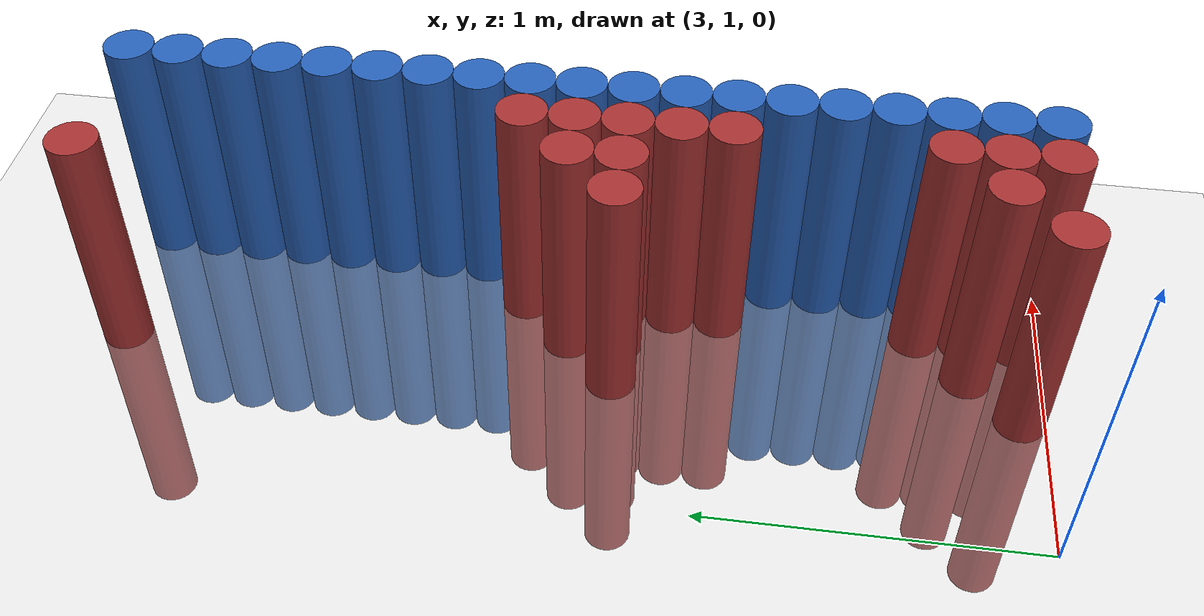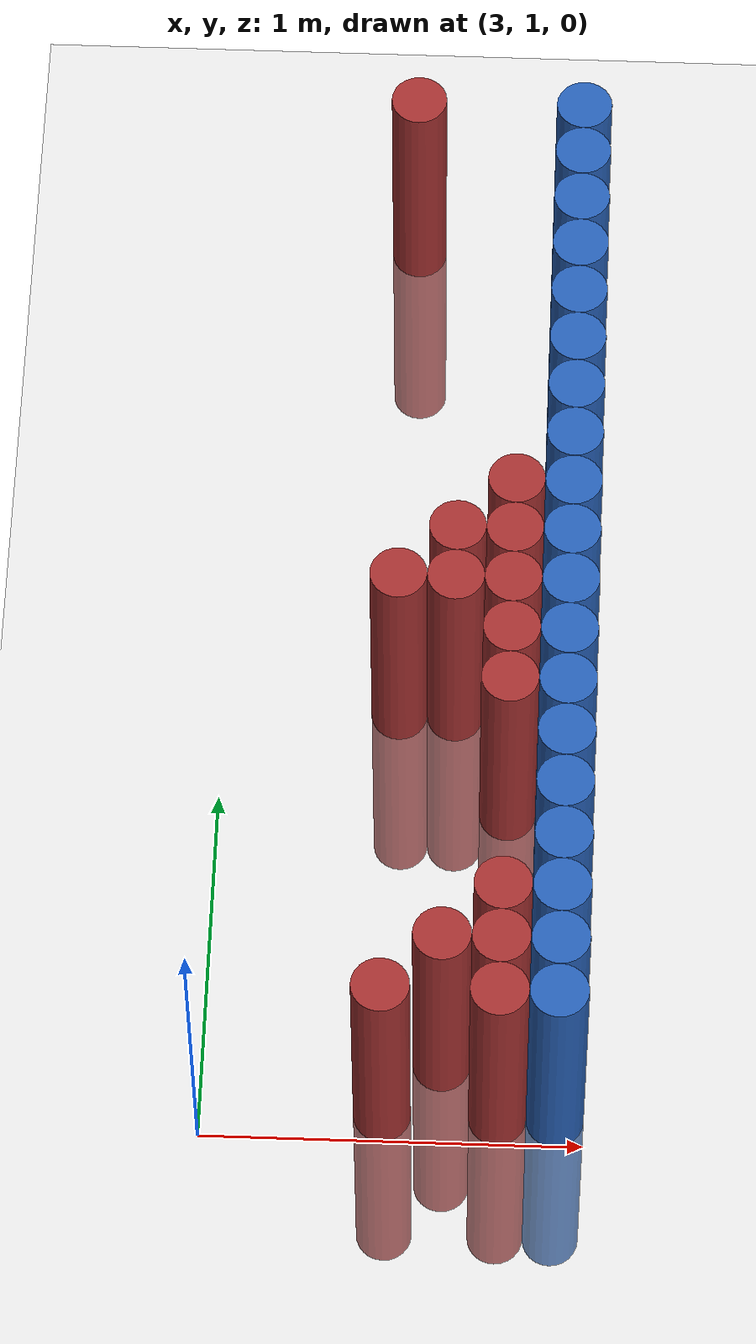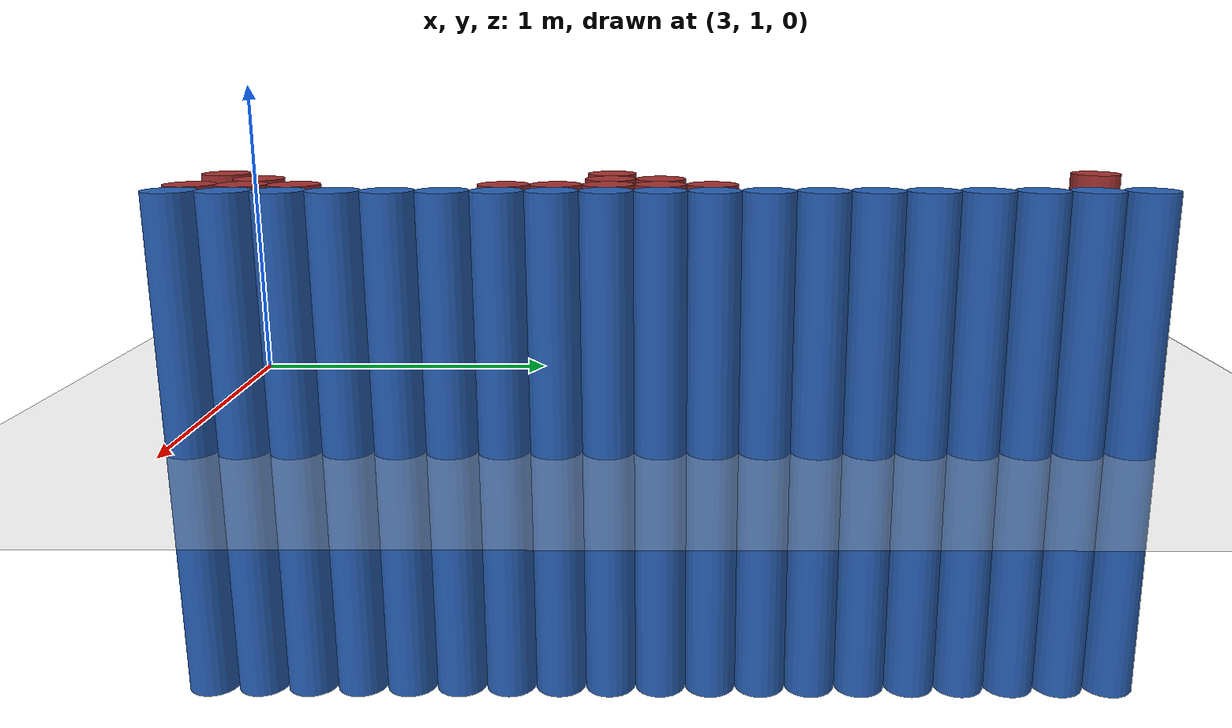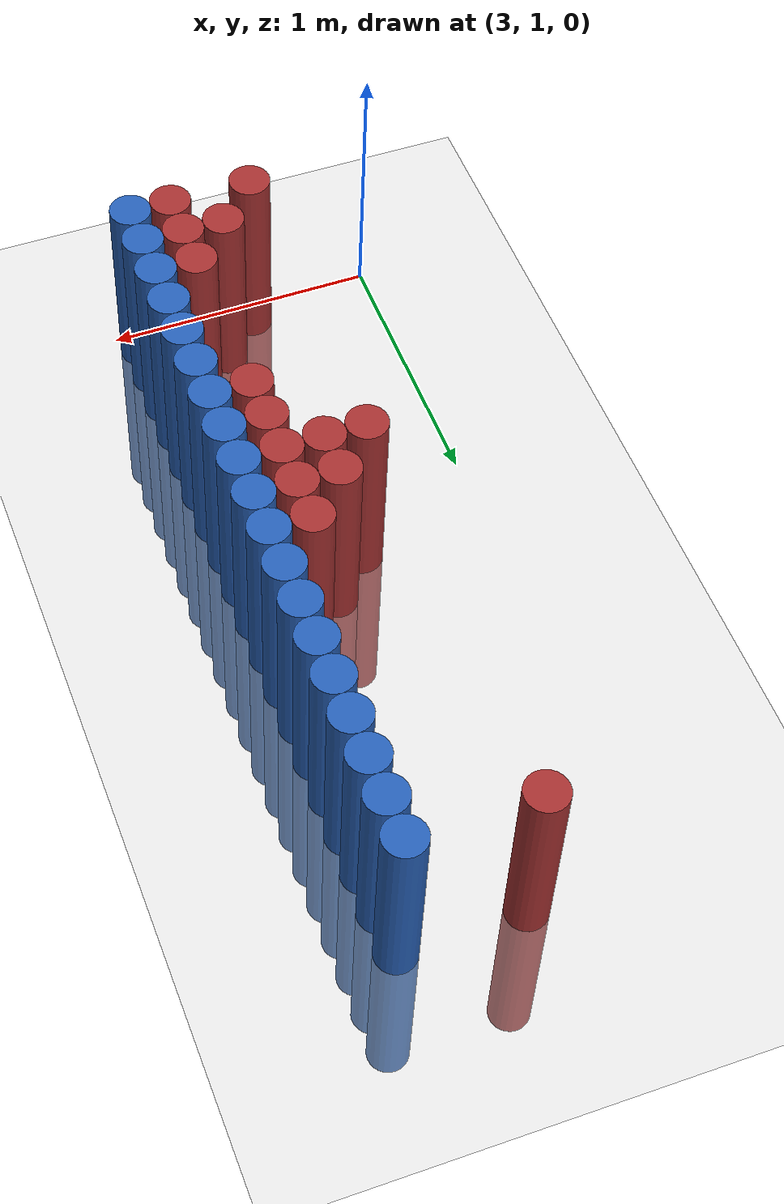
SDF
<sdf version="1.6">
 <world name="default">
  <model name="ground_plane">
   <static>1</static>
   <link name="link">
    <collision name="collision">
     <geometry><plane><normal>0 0 1</normal><size>100 100</size></plane></geometry>
     <surface><friction><ode><mu>100</mu><mu2>50</mu2></ode></friction></surface>
    </collision>
    <visual name="visual">
     <cast_shadows>0</cast_shadows>
     <geometry><plane><normal>0 0 1</normal><size>100 100</size></plane></geometry>
     <material>
      <script><uri>file://media/materials/scripts/gazebo.material</uri><name>Gazebo/Grey</name></script>
     </material>
    </visual>
   </link>
  </model>
  <model name="unit_cylinder_130">
   <static>1</static>
   <pose>3.925000 1.225000 0.000000 0.000000 0.000000 0.000000</pose>
   <link name="link">
    <inertial>
     <mass>1</mass>
     <inertia><ixx>0.145833</ixx><ixy>0</ixy><ixz>0</ixz><iyy>0.145833</iyy><iyz>0</iyz><izz>0.125</izz></inertia>
    </inertial>
    <collision name="collision">
     <geometry><cylinder><radius>0.075000</radius><length>1.5</length></cylinder></geometry>
    </collision>
    <visual name="visual">
     <geometry><cylinder><radius>0.075000</radius><length>1.5</length></cylinder></geometry>
     <material>
      <ambient>0.152000 0.379000 0.720000 1</ambient>
      <diffuse>0.152000 0.379000 0.720000 1</diffuse>
     </material>
     <material>
      <script><name>Gazebo/Grey</name><uri>file://media/materials/scripts/gazebo.material</uri></script>
     </material>
    </visual>
   </link>
  </model>
  <model name="unit_cylinder_132">
   <static>1</static>
   <pose>3.925000 1.375000 0.000000 0.000000 0.000000 0.000000</pose>
   <link name="link">
    <inertial>
     <mass>1</mass>
     <inertia><ixx>0.145833</ixx><ixy>0</ixy><ixz>0</ixz><iyy>0.145833</iyy><iyz>0</iyz><izz>0.125</izz></inertia>
    </inertial>
    <collision name="collision">
     <geometry><cylinder><radius>0.075000</radius><length>1.5</length></cylinder></geometry>
    </collision>
    <visual name="visual">
     <geometry><cylinder><radius>0.075000</radius><length>1.5</length></cylinder></geometry>
     <material>
      <ambient>0.152000 0.379000 0.720000 1</ambient>
      <diffuse>0.152000 0.379000 0.720000 1</diffuse>
     </material>
     <material>
      <script><name>Gazebo/Grey</name><uri>file://media/materials/scripts/gazebo.material</uri></script>
     </material>
    </visual>
   </link>
  </model>
  <model name="unit_cylinder_134">
   <static>1</static>
   <pose>3.925000 1.525000 0.000000 0.000000 0.000000 0.000000</pose>
   <link name="link">
    <inertial>
     <mass>1</mass>
     <inertia><ixx>0.145833</ixx><ixy>0</ixy><ixz>0</ixz><iyy>0.145833</iyy><iyz>0</iyz><izz>0.125</izz></inertia>
    </inertial>
    <collision name="collision">
     <geometry><cylinder><radius>0.075000</radius><length>1.5</length></cylinder></geometry>
    </collision>
    <visual name="visual">
     <geometry><cylinder><radius>0.075000</radius><length>1.5</length></cylinder></geometry>
     <material>
      <ambient>0.152000 0.379000 0.720000 1</ambient>
      <diffuse>0.152000 0.379000 0.720000 1</diffuse>
     </material>
     <material>
      <script><name>Gazebo/Grey</name><uri>file://media/materials/scripts/gazebo.material</uri></script>
     </material>
    </visual>
   </link>
  </model>
  <model name="unit_cylinder_136">
   <static>1</static>
   <pose>3.925000 1.675000 0.000000 0.000000 0.000000 0.000000</pose>
   <link name="link">
    <inertial>
     <mass>1</mass>
     <inertia><ixx>0.145833</ixx><ixy>0</ixy><ixz>0</ixz><iyy>0.145833</iyy><iyz>0</iyz><izz>0.125</izz></inertia>
    </inertial>
    <collision name="collision">
     <geometry><cylinder><radius>0.075000</radius><length>1.5</length></cylinder></geometry>
    </collision>
    <visual name="visual">
     <geometry><cylinder><radius>0.075000</radius><length>1.5</length></cylinder></geometry>
     <material>
      <ambient>0.152000 0.379000 0.720000 1</ambient>
      <diffuse>0.152000 0.379000 0.720000 1</diffuse>
     </material>
     <material>
      <script><name>Gazebo/Grey</name><uri>file://media/materials/scripts/gazebo.material</uri></script>
     </material>
    </visual>
   </link>
  </model>
  <model name="unit_cylinder_138">
   <static>1</static>
   <pose>3.925000 1.825000 0.000000 0.000000 0.000000 0.000000</pose>
   <link name="link">
    <inertial>
     <mass>1</mass>
     <inertia><ixx>0.145833</ixx><ixy>0</ixy><ixz>0</ixz><iyy>0.145833</iyy><iyz>0</iyz><izz>0.125</izz></inertia>
    </inertial>
    <collision name="collision">
     <geometry><cylinder><radius>0.075000</radius><length>1.5</length></cylinder></geometry>
    </collision>
    <visual name="visual">
     <geometry><cylinder><radius>0.075000</radius><length>1.5</length></cylinder></geometry>
     <material>
      <ambient>0.152000 0.379000 0.720000 1</ambient>
      <diffuse>0.152000 0.379000 0.720000 1</diffuse>
     </material>
     <material>
      <script><name>Gazebo/Grey</name><uri>file://media/materials/scripts/gazebo.material</uri></script>
     </material>
    </visual>
   </link>
  </model>
  <model name="unit_cylinder_140">
   <static>1</static>
   <pose>3.925000 1.975000 0.000000 0.000000 0.000000 0.000000</pose>
   <link name="link">
    <inertial>
     <mass>1</mass>
     <inertia><ixx>0.145833</ixx><ixy>0</ixy><ixz>0</ixz><iyy>0.145833</iyy><iyz>0</iyz><izz>0.125</izz></inertia>
    </inertial>
    <collision name="collision">
     <geometry><cylinder><radius>0.075000</radius><length>1.5</length></cylinder></geometry>
    </collision>
    <visual name="visual">
     <geometry><cylinder><radius>0.075000</radius><length>1.5</length></cylinder></geometry>
     <material>
      <ambient>0.152000 0.379000 0.720000 1</ambient>
      <diffuse>0.152000 0.379000 0.720000 1</diffuse>
     </material>
     <material>
      <script><name>Gazebo/Grey</name><uri>file://media/materials/scripts/gazebo.material</uri></script>
     </material>
    </visual>
   </link>
  </model>
  <model name="unit_cylinder_142">
   <static>1</static>
   <pose>3.925000 2.125000 0.000000 0.000000 0.000000 0.000000</pose>
   <link name="link">
    <inertial>
     <mass>1</mass>
     <inertia><ixx>0.145833</ixx><ixy>0</ixy><ixz>0</ixz><iyy>0.145833</iyy><iyz>0</iyz><izz>0.125</izz></inertia>
    </inertial>
    <collision name="collision">
     <geometry><cylinder><radius>0.075000</radius><length>1.5</length></cylinder></geometry>
    </collision>
    <visual name="visual">
     <geometry><cylinder><radius>0.075000</radius><length>1.5</length></cylinder></geometry>
     <material>
      <ambient>0.152000 0.379000 0.720000 1</ambient>
      <diffuse>0.152000 0.379000 0.720000 1</diffuse>
     </material>
     <material>
      <script><name>Gazebo/Grey</name><uri>file://media/materials/scripts/gazebo.material</uri></script>
     </material>
    </visual>
   </link>
  </model>
  <model name="unit_cylinder_144">
   <static>1</static>
   <pose>3.925000 2.275000 0.000000 0.000000 0.000000 0.000000</pose>
   <link name="link">
    <inertial>
     <mass>1</mass>
     <inertia><ixx>0.145833</ixx><ixy>0</ixy><ixz>0</ixz><iyy>0.145833</iyy><iyz>0</iyz><izz>0.125</izz></inertia>
    </inertial>
    <collision name="collision">
     <geometry><cylinder><radius>0.075000</radius><length>1.5</length></cylinder></geometry>
    </collision>
    <visual name="visual">
     <geometry><cylinder><radius>0.075000</radius><length>1.5</length></cylinder></geometry>
     <material>
      <ambient>0.152000 0.379000 0.720000 1</ambient>
      <diffuse>0.152000 0.379000 0.720000 1</diffuse>
     </material>
     <material>
      <script><name>Gazebo/Grey</name><uri>file://media/materials/scripts/gazebo.material</uri></script>
     </material>
    </visual>
   </link>
  </model>
  <model name="unit_cylinder_146">
   <static>1</static>
   <pose>3.925000 2.425000 0.000000 0.000000 0.000000 0.000000</pose>
   <link name="link">
    <inertial>
     <mass>1</mass>
     <inertia><ixx>0.145833</ixx><ixy>0</ixy><ixz>0</ixz><iyy>0.145833</iyy><iyz>0</iyz><izz>0.125</izz></inertia>
    </inertial>
    <collision name="collision">
     <geometry><cylinder><radius>0.075000</radius><length>1.5</length></cylinder></geometry>
    </collision>
    <visual name="visual">
     <geometry><cylinder><radius>0.075000</radius><length>1.5</length></cylinder></geometry>
     <material>
      <ambient>0.152000 0.379000 0.720000 1</ambient>
      <diffuse>0.152000 0.379000 0.720000 1</diffuse>
     </material>
     <material>
      <script><name>Gazebo/Grey</name><uri>file://media/materials/scripts/gazebo.material</uri></script>
     </material>
    </visual>
   </link>
  </model>
  <model name="unit_cylinder_148">
   <static>1</static>
   <pose>3.925000 2.575000 0.000000 0.000000 0.000000 0.000000</pose>
   <link name="link">
    <inertial>
     <mass>1</mass>
     <inertia><ixx>0.145833</ixx><ixy>0</ixy><ixz>0</ixz><iyy>0.145833</iyy><iyz>0</iyz><izz>0.125</izz></inertia>
    </inertial>
    <collision name="collision">
     <geometry><cylinder><radius>0.075000</radius><length>1.5</length></cylinder></geometry>
    </collision>
    <visual name="visual">
     <geometry><cylinder><radius>0.075000</radius><length>1.5</length></cylinder></geometry>
     <material>
      <ambient>0.152000 0.379000 0.720000 1</ambient>
      <diffuse>0.152000 0.379000 0.720000 1</diffuse>
     </material>
     <material>
      <script><name>Gazebo/Grey</name><uri>file://media/materials/scripts/gazebo.material</uri></script>
     </material>
    </visual>
   </link>
  </model>
  <model name="unit_cylinder_150">
   <static>1</static>
   <pose>3.925000 2.725000 0.000000 0.000000 0.000000 0.000000</pose>
   <link name="link">
    <inertial>
     <mass>1</mass>
     <inertia><ixx>0.145833</ixx><ixy>0</ixy><ixz>0</ixz><iyy>0.145833</iyy><iyz>0</iyz><izz>0.125</izz></inertia>
    </inertial>
    <collision name="collision">
     <geometry><cylinder><radius>0.075000</radius><length>1.5</length></cylinder></geometry>
    </collision>
    <visual name="visual">
     <geometry><cylinder><radius>0.075000</radius><length>1.5</length></cylinder></geometry>
     <material>
      <ambient>0.152000 0.379000 0.720000 1</ambient>
      <diffuse>0.152000 0.379000 0.720000 1</diffuse>
     </material>
     <material>
      <script><name>Gazebo/Grey</name><uri>file://media/materials/scripts/gazebo.material</uri></script>
     </material>
    </visual>
   </link>
  </model>
  <model name="unit_cylinder_152">
   <static>1</static>
   <pose>3.925000 2.875000 0.000000 0.000000 0.000000 0.000000</pose>
   <link name="link">
    <inertial>
     <mass>1</mass>
     <inertia><ixx>0.145833</ixx><ixy>0</ixy><ixz>0</ixz><iyy>0.145833</iyy><iyz>0</iyz><izz>0.125</izz></inertia>
    </inertial>
    <collision name="collision">
     <geometry><cylinder><radius>0.075000</radius><length>1.5</length></cylinder></geometry>
    </collision>
    <visual name="visual">
     <geometry><cylinder><radius>0.075000</radius><length>1.5</length></cylinder></geometry>
     <material>
      <ambient>0.152000 0.379000 0.720000 1</ambient>
      <diffuse>0.152000 0.379000 0.720000 1</diffuse>
     </material>
     <material>
      <script><name>Gazebo/Grey</name><uri>file://media/materials/scripts/gazebo.material</uri></script>
     </material>
    </visual>
   </link>
  </model>
  <model name="unit_cylinder_154">
   <static>1</static>
   <pose>3.925000 3.025000 0.000000 0.000000 0.000000 0.000000</pose>
   <link name="link">
    <inertial>
     <mass>1</mass>
     <inertia><ixx>0.145833</ixx><ixy>0</ixy><ixz>0</ixz><iyy>0.145833</iyy><iyz>0</iyz><izz>0.125</izz></inertia>
    </inertial>
    <collision name="collision">
     <geometry><cylinder><radius>0.075000</radius><length>1.5</length></cylinder></geometry>
    </collision>
    <visual name="visual">
     <geometry><cylinder><radius>0.075000</radius><length>1.5</length></cylinder></geometry>
     <material>
      <ambient>0.152000 0.379000 0.720000 1</ambient>
      <diffuse>0.152000 0.379000 0.720000 1</diffuse>
     </material>
     <material>
      <script><name>Gazebo/Grey</name><uri>file://media/materials/scripts/gazebo.material</uri></script>
     </material>
    </visual>
   </link>
  </model>
  <model name="unit_cylinder_156">
   <static>1</static>
   <pose>3.925000 3.175000 0.000000 0.000000 0.000000 0.000000</pose>
   <link name="link">
    <inertial>
     <mass>1</mass>
     <inertia><ixx>0.145833</ixx><ixy>0</ixy><ixz>0</ixz><iyy>0.145833</iyy><iyz>0</iyz><izz>0.125</izz></inertia>
    </inertial>
    <collision name="collision">
     <geometry><cylinder><radius>0.075000</radius><length>1.5</length></cylinder></geometry>
    </collision>
    <visual name="visual">
     <geometry><cylinder><radius>0.075000</radius><length>1.5</length></cylinder></geometry>
     <material>
      <ambient>0.152000 0.379000 0.720000 1</ambient>
      <diffuse>0.152000 0.379000 0.720000 1</diffuse>
     </material>
     <material>
      <script><name>Gazebo/Grey</name><uri>file://media/materials/scripts/gazebo.material</uri></script>
     </material>
    </visual>
   </link>
  </model>
  <model name="unit_cylinder_158">
   <static>1</static>
   <pose>3.925000 3.325000 0.000000 0.000000 0.000000 0.000000</pose>
   <link name="link">
    <inertial>
     <mass>1</mass>
     <inertia><ixx>0.145833</ixx><ixy>0</ixy><ixz>0</ixz><iyy>0.145833</iyy><iyz>0</iyz><izz>0.125</izz></inertia>
    </inertial>
    <collision name="collision">
     <geometry><cylinder><radius>0.075000</radius><length>1.5</length></cylinder></geometry>
    </collision>
    <visual name="visual">
     <geometry><cylinder><radius>0.075000</radius><length>1.5</length></cylinder></geometry>
     <material>
      <ambient>0.152000 0.379000 0.720000 1</ambient>
      <diffuse>0.152000 0.379000 0.720000 1</diffuse>
     </material>
     <material>
      <script><name>Gazebo/Grey</name><uri>file://media/materials/scripts/gazebo.material</uri></script>
     </material>
    </visual>
   </link>
  </model>
  <model name="unit_cylinder_160">
   <static>1</static>
   <pose>3.925000 3.475000 0.000000 0.000000 0.000000 0.000000</pose>
   <link name="link">
    <inertial>
     <mass>1</mass>
     <inertia><ixx>0.145833</ixx><ixy>0</ixy><ixz>0</ixz><iyy>0.145833</iyy><iyz>0</iyz><izz>0.125</izz></inertia>
    </inertial>
    <collision name="collision">
     <geometry><cylinder><radius>0.075000</radius><length>1.5</length></cylinder></geometry>
    </collision>
    <visual name="visual">
     <geometry><cylinder><radius>0.075000</radius><length>1.5</length></cylinder></geometry>
     <material>
      <ambient>0.152000 0.379000 0.720000 1</ambient>
      <diffuse>0.152000 0.379000 0.720000 1</diffuse>
     </material>
     <material>
      <script><name>Gazebo/Grey</name><uri>file://media/materials/scripts/gazebo.material</uri></script>
     </material>
    </visual>
   </link>
  </model>
  <model name="unit_cylinder_162">
   <static>1</static>
   <pose>3.925000 3.625000 0.000000 0.000000 0.000000 0.000000</pose>
   <link name="link">
    <inertial>
     <mass>1</mass>
     <inertia><ixx>0.145833</ixx><ixy>0</ixy><ixz>0</ixz><iyy>0.145833</iyy><iyz>0</iyz><izz>0.125</izz></inertia>
    </inertial>
    <collision name="collision">
     <geometry><cylinder><radius>0.075000</radius><length>1.5</length></cylinder></geometry>
    </collision>
    <visual name="visual">
     <geometry><cylinder><radius>0.075000</radius><length>1.5</length></cylinder></geometry>
     <material>
      <ambient>0.152000 0.379000 0.720000 1</ambient>
      <diffuse>0.152000 0.379000 0.720000 1</diffuse>
     </material>
     <material>
      <script><name>Gazebo/Grey</name><uri>file://media/materials/scripts/gazebo.material</uri></script>
     </material>
    </visual>
   </link>
  </model>
  <model name="unit_cylinder_164">
   <static>1</static>
   <pose>3.925000 3.775000 0.000000 0.000000 0.000000 0.000000</pose>
   <link name="link">
    <inertial>
     <mass>1</mass>
     <inertia><ixx>0.145833</ixx><ixy>0</ixy><ixz>0</ixz><iyy>0.145833</iyy><iyz>0</iyz><izz>0.125</izz></inertia>
    </inertial>
    <collision name="collision">
     <geometry><cylinder><radius>0.075000</radius><length>1.5</length></cylinder></geometry>
    </collision>
    <visual name="visual">
     <geometry><cylinder><radius>0.075000</radius><length>1.5</length></cylinder></geometry>
     <material>
      <ambient>0.152000 0.379000 0.720000 1</ambient>
      <diffuse>0.152000 0.379000 0.720000 1</diffuse>
     </material>
     <material>
      <script><name>Gazebo/Grey</name><uri>file://media/materials/scripts/gazebo.material</uri></script>
     </material>
    </visual>
   </link>
  </model>
  <model name="unit_cylinder_419">
   <static>1</static>
   <pose>3.475000 1.075000 0.000000 0.000000 0.000000 0.000000</pose>
   <link name="link">
    <inertial>
     <mass>1</mass>
     <inertia><ixx>0.145833</ixx><ixy>0</ixy><ixz>0</ixz><iyy>0.145833</iyy><iyz>0</iyz><izz>0.125</izz></inertia>
    </inertial>
    <collision name="collision">
     <geometry><cylinder><radius>0.075000</radius><length>1.5</length></cylinder></geometry>
    </collision>
    <visual name="visual">
     <geometry><cylinder><radius>0.075000</radius><length>1.5</length></cylinder></geometry>
     <material>
      <ambient>0.648000 0.192000 0.192000 1</ambient>
      <diffuse>0.648000 0.192000 0.192000 1</diffuse>
     </material>
     <material>
      <script><name>Gazebo/Grey</name><uri>file://media/materials/scripts/gazebo.material</uri></script>
     </material>
    </visual>
   </link>
  </model>
  <model name="unit_cylinder_420">
   <static>1</static>
   <pose>3.475000 2.275000 0.000000 0.000000 0.000000 0.000000</pose>
   <link name="link">
    <inertial>
     <mass>1</mass>
     <inertia><ixx>0.145833</ixx><ixy>0</ixy><ixz>0</ixz><iyy>0.145833</iyy><iyz>0</iyz><izz>0.125</izz></inertia>
    </inertial>
    <collision name="collision">
     <geometry><cylinder><radius>0.075000</radius><length>1.5</length></cylinder></geometry>
    </collision>
    <visual name="visual">
     <geometry><cylinder><radius>0.075000</radius><length>1.5</length></cylinder></geometry>
     <material>
      <ambient>0.648000 0.192000 0.192000 1</ambient>
      <diffuse>0.648000 0.192000 0.192000 1</diffuse>
     </material>
     <material>
      <script><name>Gazebo/Grey</name><uri>file://media/materials/scripts/gazebo.material</uri></script>
     </material>
    </visual>
   </link>
  </model>
  <model name="unit_cylinder_421">
   <static>1</static>
   <pose>3.475000 3.775000 0.000000 0.000000 0.000000 0.000000</pose>
   <link name="link">
    <inertial>
     <mass>1</mass>
     <inertia><ixx>0.145833</ixx><ixy>0</ixy><ixz>0</ixz><iyy>0.145833</iyy><iyz>0</iyz><izz>0.125</izz></inertia>
    </inertial>
    <collision name="collision">
     <geometry><cylinder><radius>0.075000</radius><length>1.5</length></cylinder></geometry>
    </collision>
    <visual name="visual">
     <geometry><cylinder><radius>0.075000</radius><length>1.5</length></cylinder></geometry>
     <material>
      <ambient>0.648000 0.192000 0.192000 1</ambient>
      <diffuse>0.648000 0.192000 0.192000 1</diffuse>
     </material>
     <material>
      <script><name>Gazebo/Grey</name><uri>file://media/materials/scripts/gazebo.material</uri></script>
     </material>
    </visual>
   </link>
  </model>
  <model name="unit_cylinder_428">
   <static>1</static>
   <pose>3.625000 1.225000 0.000000 0.000000 0.000000 0.000000</pose>
   <link name="link">
    <inertial>
     <mass>1</mass>
     <inertia><ixx>0.145833</ixx><ixy>0</ixy><ixz>0</ixz><iyy>0.145833</iyy><iyz>0</iyz><izz>0.125</izz></inertia>
    </inertial>
    <collision name="collision">
     <geometry><cylinder><radius>0.075000</radius><length>1.5</length></cylinder></geometry>
    </collision>
    <visual name="visual">
     <geometry><cylinder><radius>0.075000</radius><length>1.5</length></cylinder></geometry>
     <material>
      <ambient>0.648000 0.192000 0.192000 1</ambient>
      <diffuse>0.648000 0.192000 0.192000 1</diffuse>
     </material>
     <material>
      <script><name>Gazebo/Grey</name><uri>file://media/materials/scripts/gazebo.material</uri></script>
     </material>
    </visual>
   </link>
  </model>
  <model name="unit_cylinder_429">
   <static>1</static>
   <pose>3.625000 2.275000 0.000000 0.000000 0.000000 0.000000</pose>
   <link name="link">
    <inertial>
     <mass>1</mass>
     <inertia><ixx>0.145833</ixx><ixy>0</ixy><ixz>0</ixz><iyy>0.145833</iyy><iyz>0</iyz><izz>0.125</izz></inertia>
    </inertial>
    <collision name="collision">
     <geometry><cylinder><radius>0.075000</radius><length>1.5</length></cylinder></geometry>
    </collision>
    <visual name="visual">
     <geometry><cylinder><radius>0.075000</radius><length>1.5</length></cylinder></geometry>
     <material>
      <ambient>0.648000 0.192000 0.192000 1</ambient>
      <diffuse>0.648000 0.192000 0.192000 1</diffuse>
     </material>
     <material>
      <script><name>Gazebo/Grey</name><uri>file://media/materials/scripts/gazebo.material</uri></script>
     </material>
    </visual>
   </link>
  </model>
  <model name="unit_cylinder_430">
   <static>1</static>
   <pose>3.625000 2.425000 0.000000 0.000000 0.000000 0.000000</pose>
   <link name="link">
    <inertial>
     <mass>1</mass>
     <inertia><ixx>0.145833</ixx><ixy>0</ixy><ixz>0</ixz><iyy>0.145833</iyy><iyz>0</iyz><izz>0.125</izz></inertia>
    </inertial>
    <collision name="collision">
     <geometry><cylinder><radius>0.075000</radius><length>1.5</length></cylinder></geometry>
    </collision>
    <visual name="visual">
     <geometry><cylinder><radius>0.075000</radius><length>1.5</length></cylinder></geometry>
     <material>
      <ambient>0.648000 0.192000 0.192000 1</ambient>
      <diffuse>0.648000 0.192000 0.192000 1</diffuse>
     </material>
     <material>
      <script><name>Gazebo/Grey</name><uri>file://media/materials/scripts/gazebo.material</uri></script>
     </material>
    </visual>
   </link>
  </model>
  <model name="unit_cylinder_443">
   <static>1</static>
   <pose>3.775000 1.075000 0.000000 0.000000 0.000000 0.000000</pose>
   <link name="link">
    <inertial>
     <mass>1</mass>
     <inertia><ixx>0.145833</ixx><ixy>0</ixy><ixz>0</ixz><iyy>0.145833</iyy><iyz>0</iyz><izz>0.125</izz></inertia>
    </inertial>
    <collision name="collision">
     <geometry><cylinder><radius>0.075000</radius><length>1.5</length></cylinder></geometry>
    </collision>
    <visual name="visual">
     <geometry><cylinder><radius>0.075000</radius><length>1.5</length></cylinder></geometry>
     <material>
      <ambient>0.648000 0.192000 0.192000 1</ambient>
      <diffuse>0.648000 0.192000 0.192000 1</diffuse>
     </material>
     <material>
      <script><name>Gazebo/Grey</name><uri>file://media/materials/scripts/gazebo.material</uri></script>
     </material>
    </visual>
   </link>
  </model>
  <model name="unit_cylinder_444">
   <static>1</static>
   <pose>3.775000 1.225000 0.000000 0.000000 0.000000 0.000000</pose>
   <link name="link">
    <inertial>
     <mass>1</mass>
     <inertia><ixx>0.145833</ixx><ixy>0</ixy><ixz>0</ixz><iyy>0.145833</iyy><iyz>0</iyz><izz>0.125</izz></inertia>
    </inertial>
    <collision name="collision">
     <geometry><cylinder><radius>0.075000</radius><length>1.5</length></cylinder></geometry>
    </collision>
    <visual name="visual">
     <geometry><cylinder><radius>0.075000</radius><length>1.5</length></cylinder></geometry>
     <material>
      <ambient>0.648000 0.192000 0.192000 1</ambient>
      <diffuse>0.648000 0.192000 0.192000 1</diffuse>
     </material>
     <material>
      <script><name>Gazebo/Grey</name><uri>file://media/materials/scripts/gazebo.material</uri></script>
     </material>
    </visual>
   </link>
  </model>
  <model name="unit_cylinder_445">
   <static>1</static>
   <pose>3.775000 1.375000 0.000000 0.000000 0.000000 0.000000</pose>
   <link name="link">
    <inertial>
     <mass>1</mass>
     <inertia><ixx>0.145833</ixx><ixy>0</ixy><ixz>0</ixz><iyy>0.145833</iyy><iyz>0</iyz><izz>0.125</izz></inertia>
    </inertial>
    <collision name="collision">
     <geometry><cylinder><radius>0.075000</radius><length>1.5</length></cylinder></geometry>
    </collision>
    <visual name="visual">
     <geometry><cylinder><radius>0.075000</radius><length>1.5</length></cylinder></geometry>
     <material>
      <ambient>0.648000 0.192000 0.192000 1</ambient>
      <diffuse>0.648000 0.192000 0.192000 1</diffuse>
     </material>
     <material>
      <script><name>Gazebo/Grey</name><uri>file://media/materials/scripts/gazebo.material</uri></script>
     </material>
    </visual>
   </link>
  </model>
  <model name="unit_cylinder_446">
   <static>1</static>
   <pose>3.775000 1.975000 0.000000 0.000000 0.000000 0.000000</pose>
   <link name="link">
    <inertial>
     <mass>1</mass>
     <inertia><ixx>0.145833</ixx><ixy>0</ixy><ixz>0</ixz><iyy>0.145833</iyy><iyz>0</iyz><izz>0.125</izz></inertia>
    </inertial>
    <collision name="collision">
     <geometry><cylinder><radius>0.075000</radius><length>1.5</length></cylinder></geometry>
    </collision>
    <visual name="visual">
     <geometry><cylinder><radius>0.075000</radius><length>1.5</length></cylinder></geometry>
     <material>
      <ambient>0.648000 0.192000 0.192000 1</ambient>
      <diffuse>0.648000 0.192000 0.192000 1</diffuse>
     </material>
     <material>
      <script><name>Gazebo/Grey</name><uri>file://media/materials/scripts/gazebo.material</uri></script>
     </material>
    </visual>
   </link>
  </model>
  <model name="unit_cylinder_447">
   <static>1</static>
   <pose>3.775000 2.125000 0.000000 0.000000 0.000000 0.000000</pose>
   <link name="link">
    <inertial>
     <mass>1</mass>
     <inertia><ixx>0.145833</ixx><ixy>0</ixy><ixz>0</ixz><iyy>0.145833</iyy><iyz>0</iyz><izz>0.125</izz></inertia>
    </inertial>
    <collision name="collision">
     <geometry><cylinder><radius>0.075000</radius><length>1.5</length></cylinder></geometry>
    </collision>
    <visual name="visual">
     <geometry><cylinder><radius>0.075000</radius><length>1.5</length></cylinder></geometry>
     <material>
      <ambient>0.648000 0.192000 0.192000 1</ambient>
      <diffuse>0.648000 0.192000 0.192000 1</diffuse>
     </material>
     <material>
      <script><name>Gazebo/Grey</name><uri>file://media/materials/scripts/gazebo.material</uri></script>
     </material>
    </visual>
   </link>
  </model>
  <model name="unit_cylinder_448">
   <static>1</static>
   <pose>3.775000 2.275000 0.000000 0.000000 0.000000 0.000000</pose>
   <link name="link">
    <inertial>
     <mass>1</mass>
     <inertia><ixx>0.145833</ixx><ixy>0</ixy><ixz>0</ixz><iyy>0.145833</iyy><iyz>0</iyz><izz>0.125</izz></inertia>
    </inertial>
    <collision name="collision">
     <geometry><cylinder><radius>0.075000</radius><length>1.5</length></cylinder></geometry>
    </collision>
    <visual name="visual">
     <geometry><cylinder><radius>0.075000</radius><length>1.5</length></cylinder></geometry>
     <material>
      <ambient>0.648000 0.192000 0.192000 1</ambient>
      <diffuse>0.648000 0.192000 0.192000 1</diffuse>
     </material>
     <material>
      <script><name>Gazebo/Grey</name><uri>file://media/materials/scripts/gazebo.material</uri></script>
     </material>
    </visual>
   </link>
  </model>
  <model name="unit_cylinder_449">
   <static>1</static>
   <pose>3.775000 2.425000 0.000000 0.000000 0.000000 0.000000</pose>
   <link name="link">
    <inertial>
     <mass>1</mass>
     <inertia><ixx>0.145833</ixx><ixy>0</ixy><ixz>0</ixz><iyy>0.145833</iyy><iyz>0</iyz><izz>0.125</izz></inertia>
    </inertial>
    <collision name="collision">
     <geometry><cylinder><radius>0.075000</radius><length>1.5</length></cylinder></geometry>
    </collision>
    <visual name="visual">
     <geometry><cylinder><radius>0.075000</radius><length>1.5</length></cylinder></geometry>
     <material>
      <ambient>0.648000 0.192000 0.192000 1</ambient>
      <diffuse>0.648000 0.192000 0.192000 1</diffuse>
     </material>
     <material>
      <script><name>Gazebo/Grey</name><uri>file://media/materials/scripts/gazebo.material</uri></script>
     </material>
    </visual>
   </link>
  </model>
  <model name="unit_cylinder_450">
   <static>1</static>
   <pose>3.775000 2.575000 0.000000 0.000000 0.000000 0.000000</pose>
   <link name="link">
    <inertial>
     <mass>1</mass>
     <inertia><ixx>0.145833</ixx><ixy>0</ixy><ixz>0</ixz><iyy>0.145833</iyy><iyz>0</iyz><izz>0.125</izz></inertia>
    </inertial>
    <collision name="collision">
     <geometry><cylinder><radius>0.075000</radius><length>1.5</length></cylinder></geometry>
    </collision>
    <visual name="visual">
     <geometry><cylinder><radius>0.075000</radius><length>1.5</length></cylinder></geometry>
     <material>
      <ambient>0.648000 0.192000 0.192000 1</ambient>
      <diffuse>0.648000 0.192000 0.192000 1</diffuse>
     </material>
     <material>
      <script><name>Gazebo/Grey</name><uri>file://media/materials/scripts/gazebo.material</uri></script>
     </material>
    </visual>
   </link>
  </model>
  <model name="unit_cylinder_480">
   <static>1</static>
   <pose>3.925000 1.075000 0.000000 0.000000 0.000000 0.000000</pose>
   <link name="link">
    <inertial>
     <mass>1</mass>
     <inertia><ixx>0.145833</ixx><ixy>0</ixy><ixz>0</ixz><iyy>0.145833</iyy><iyz>0</iyz><izz>0.125</izz></inertia>
    </inertial>
    <collision name="collision">
     <geometry><cylinder><radius>0.075000</radius><length>1.5</length></cylinder></geometry>
    </collision>
    <visual name="visual">
     <geometry><cylinder><radius>0.075000</radius><length>1.5</length></cylinder></geometry>
     <material>
      <ambient>0.152000 0.379000 0.720000 1</ambient>
      <diffuse>0.152000 0.379000 0.720000 1</diffuse>
     </material>
     <material>
      <script><name>Gazebo/Grey</name><uri>file://media/materials/scripts/gazebo.material</uri></script>
     </material>
    </visual>
   </link>
  </model>
  <model name="unit_cylinder_481">
   <static>1</static>
   <pose>3.925000 1.225000 0.000000 0.000000 0.000000 0.000000</pose>
   <link name="link">
    <inertial>
     <mass>1</mass>
     <inertia><ixx>0.145833</ixx><ixy>0</ixy><ixz>0</ixz><iyy>0.145833</iyy><iyz>0</iyz><izz>0.125</izz></inertia>
    </inertial>
    <collision name="collision">
     <geometry><cylinder><radius>0.075000</radius><length>1.5</length></cylinder></geometry>
    </collision>
    <visual name="visual">
     <geometry><cylinder><radius>0.075000</radius><length>1.5</length></cylinder></geometry>
     <material>
      <ambient>0.152000 0.379000 0.720000 1</ambient>
      <diffuse>0.152000 0.379000 0.720000 1</diffuse>
     </material>
     <material>
      <script><name>Gazebo/Grey</name><uri>file://media/materials/scripts/gazebo.material</uri></script>
     </material>
    </visual>
   </link>
  </model>
  <model name="unit_cylinder_482">
   <static>1</static>
   <pose>3.925000 1.375000 0.000000 0.000000 0.000000 0.000000</pose>
   <link name="link">
    <inertial>
     <mass>1</mass>
     <inertia><ixx>0.145833</ixx><ixy>0</ixy><ixz>0</ixz><iyy>0.145833</iyy><iyz>0</iyz><izz>0.125</izz></inertia>
    </inertial>
    <collision name="collision">
     <geometry><cylinder><radius>0.075000</radius><length>1.5</length></cylinder></geometry>
    </collision>
    <visual name="visual">
     <geometry><cylinder><radius>0.075000</radius><length>1.5</length></cylinder></geometry>
     <material>
      <ambient>0.152000 0.379000 0.720000 1</ambient>
      <diffuse>0.152000 0.379000 0.720000 1</diffuse>
     </material>
     <material>
      <script><name>Gazebo/Grey</name><uri>file://media/materials/scripts/gazebo.material</uri></script>
     </material>
    </visual>
   </link>
  </model>
  <model name="unit_cylinder_483">
   <static>1</static>
   <pose>3.925000 1.525000 0.000000 0.000000 0.000000 0.000000</pose>
   <link name="link">
    <inertial>
     <mass>1</mass>
     <inertia><ixx>0.145833</ixx><ixy>0</ixy><ixz>0</ixz><iyy>0.145833</iyy><iyz>0</iyz><izz>0.125</izz></inertia>
    </inertial>
    <collision name="collision">
     <geometry><cylinder><radius>0.075000</radius><length>1.5</length></cylinder></geometry>
    </collision>
    <visual name="visual">
     <geometry><cylinder><radius>0.075000</radius><length>1.5</length></cylinder></geometry>
     <material>
      <ambient>0.152000 0.379000 0.720000 1</ambient>
      <diffuse>0.152000 0.379000 0.720000 1</diffuse>
     </material>
     <material>
      <script><name>Gazebo/Grey</name><uri>file://media/materials/scripts/gazebo.material</uri></script>
     </material>
    </visual>
   </link>
  </model>
  <model name="unit_cylinder_484">
   <static>1</static>
   <pose>3.925000 1.675000 0.000000 0.000000 0.000000 0.000000</pose>
   <link name="link">
    <inertial>
     <mass>1</mass>
     <inertia><ixx>0.145833</ixx><ixy>0</ixy><ixz>0</ixz><iyy>0.145833</iyy><iyz>0</iyz><izz>0.125</izz></inertia>
    </inertial>
    <collision name="collision">
     <geometry><cylinder><radius>0.075000</radius><length>1.5</length></cylinder></geometry>
    </collision>
    <visual name="visual">
     <geometry><cylinder><radius>0.075000</radius><length>1.5</length></cylinder></geometry>
     <material>
      <ambient>0.152000 0.379000 0.720000 1</ambient>
      <diffuse>0.152000 0.379000 0.720000 1</diffuse>
     </material>
     <material>
      <script><name>Gazebo/Grey</name><uri>file://media/materials/scripts/gazebo.material</uri></script>
     </material>
    </visual>
   </link>
  </model>
  <model name="unit_cylinder_485">
   <static>1</static>
   <pose>3.925000 1.825000 0.000000 0.000000 0.000000 0.000000</pose>
   <link name="link">
    <inertial>
     <mass>1</mass>
     <inertia><ixx>0.145833</ixx><ixy>0</ixy><ixz>0</ixz><iyy>0.145833</iyy><iyz>0</iyz><izz>0.125</izz></inertia>
    </inertial>
    <collision name="collision">
     <geometry><cylinder><radius>0.075000</radius><length>1.5</length></cylinder></geometry>
    </collision>
    <visual name="visual">
     <geometry><cylinder><radius>0.075000</radius><length>1.5</length></cylinder></geometry>
     <material>
      <ambient>0.152000 0.379000 0.720000 1</ambient>
      <diffuse>0.152000 0.379000 0.720000 1</diffuse>
     </material>
     <material>
      <script><name>Gazebo/Grey</name><uri>file://media/materials/scripts/gazebo.material</uri></script>
     </material>
    </visual>
   </link>
  </model>
  <model name="unit_cylinder_486">
   <static>1</static>
   <pose>3.925000 1.975000 0.000000 0.000000 0.000000 0.000000</pose>
   <link name="link">
    <inertial>
     <mass>1</mass>
     <inertia><ixx>0.145833</ixx><ixy>0</ixy><ixz>0</ixz><iyy>0.145833</iyy><iyz>0</iyz><izz>0.125</izz></inertia>
    </inertial>
    <collision name="collision">
     <geometry><cylinder><radius>0.075000</radius><length>1.5</length></cylinder></geometry>
    </collision>
    <visual name="visual">
     <geometry><cylinder><radius>0.075000</radius><length>1.5</length></cylinder></geometry>
     <material>
      <ambient>0.152000 0.379000 0.720000 1</ambient>
      <diffuse>0.152000 0.379000 0.720000 1</diffuse>
     </material>
     <material>
      <script><name>Gazebo/Grey</name><uri>file://media/materials/scripts/gazebo.material</uri></script>
     </material>
    </visual>
   </link>
  </model>
  <model name="unit_cylinder_487">
   <static>1</static>
   <pose>3.925000 2.125000 0.000000 0.000000 0.000000 0.000000</pose>
   <link name="link">
    <inertial>
     <mass>1</mass>
     <inertia><ixx>0.145833</ixx><ixy>0</ixy><ixz>0</ixz><iyy>0.145833</iyy><iyz>0</iyz><izz>0.125</izz></inertia>
    </inertial>
    <collision name="collision">
     <geometry><cylinder><radius>0.075000</radius><length>1.5</length></cylinder></geometry>
    </collision>
    <visual name="visual">
     <geometry><cylinder><radius>0.075000</radius><length>1.5</length></cylinder></geometry>
     <material>
      <ambient>0.152000 0.379000 0.720000 1</ambient>
      <diffuse>0.152000 0.379000 0.720000 1</diffuse>
     </material>
     <material>
      <script><name>Gazebo/Grey</name><uri>file://media/materials/scripts/gazebo.material</uri></script>
     </material>
    </visual>
   </link>
  </model>
  <model name="unit_cylinder_488">
   <static>1</static>
   <pose>3.925000 2.275000 0.000000 0.000000 0.000000 0.000000</pose>
   <link name="link">
    <inertial>
     <mass>1</mass>
     <inertia><ixx>0.145833</ixx><ixy>0</ixy><ixz>0</ixz><iyy>0.145833</iyy><iyz>0</iyz><izz>0.125</izz></inertia>
    </inertial>
    <collision name="collision">
     <geometry><cylinder><radius>0.075000</radius><length>1.5</length></cylinder></geometry>
    </collision>
    <visual name="visual">
     <geometry><cylinder><radius>0.075000</radius><length>1.5</length></cylinder></geometry>
     <material>
      <ambient>0.152000 0.379000 0.720000 1</ambient>
      <diffuse>0.152000 0.379000 0.720000 1</diffuse>
     </material>
     <material>
      <script><name>Gazebo/Grey</name><uri>file://media/materials/scripts/gazebo.material</uri></script>
     </material>
    </visual>
   </link>
  </model>
  <model name="unit_cylinder_489">
   <static>1</static>
   <pose>3.925000 2.425000 0.000000 0.000000 0.000000 0.000000</pose>
   <link name="link">
    <inertial>
     <mass>1</mass>
     <inertia><ixx>0.145833</ixx><ixy>0</ixy><ixz>0</ixz><iyy>0.145833</iyy><iyz>0</iyz><izz>0.125</izz></inertia>
    </inertial>
    <collision name="collision">
     <geometry><cylinder><radius>0.075000</radius><length>1.5</length></cylinder></geometry>
    </collision>
    <visual name="visual">
     <geometry><cylinder><radius>0.075000</radius><length>1.5</length></cylinder></geometry>
     <material>
      <ambient>0.152000 0.379000 0.720000 1</ambient>
      <diffuse>0.152000 0.379000 0.720000 1</diffuse>
     </material>
     <material>
      <script><name>Gazebo/Grey</name><uri>file://media/materials/scripts/gazebo.material</uri></script>
     </material>
    </visual>
   </link>
  </model>
  <model name="unit_cylinder_490">
   <static>1</static>
   <pose>3.925000 2.575000 0.000000 0.000000 0.000000 0.000000</pose>
   <link name="link">
    <inertial>
     <mass>1</mass>
     <inertia><ixx>0.145833</ixx><ixy>0</ixy><ixz>0</ixz><iyy>0.145833</iyy><iyz>0</iyz><izz>0.125</izz></inertia>
    </inertial>
    <collision name="collision">
     <geometry><cylinder><radius>0.075000</radius><length>1.5</length></cylinder></geometry>
    </collision>
    <visual name="visual">
     <geometry><cylinder><radius>0.075000</radius><length>1.5</length></cylinder></geometry>
     <material>
      <ambient>0.152000 0.379000 0.720000 1</ambient>
      <diffuse>0.152000 0.379000 0.720000 1</diffuse>
     </material>
     <material>
      <script><name>Gazebo/Grey</name><uri>file://media/materials/scripts/gazebo.material</uri></script>
     </material>
    </visual>
   </link>
  </model>
  <model name="unit_cylinder_491">
   <static>1</static>
   <pose>3.925000 2.725000 0.000000 0.000000 0.000000 0.000000</pose>
   <link name="link">
    <inertial>
     <mass>1</mass>
     <inertia><ixx>0.145833</ixx><ixy>0</ixy><ixz>0</ixz><iyy>0.145833</iyy><iyz>0</iyz><izz>0.125</izz></inertia>
    </inertial>
    <collision name="collision">
     <geometry><cylinder><radius>0.075000</radius><length>1.5</length></cylinder></geometry>
    </collision>
    <visual name="visual">
     <geometry><cylinder><radius>0.075000</radius><length>1.5</length></cylinder></geometry>
     <material>
      <ambient>0.152000 0.379000 0.720000 1</ambient>
      <diffuse>0.152000 0.379000 0.720000 1</diffuse>
     </material>
     <material>
      <script><name>Gazebo/Grey</name><uri>file://media/materials/scripts/gazebo.material</uri></script>
     </material>
    </visual>
   </link>
  </model>
  <model name="unit_cylinder_492">
   <static>1</static>
   <pose>3.925000 2.875000 0.000000 0.000000 0.000000 0.000000</pose>
   <link name="link">
    <inertial>
     <mass>1</mass>
     <inertia><ixx>0.145833</ixx><ixy>0</ixy><ixz>0</ixz><iyy>0.145833</iyy><iyz>0</iyz><izz>0.125</izz></inertia>
    </inertial>
    <collision name="collision">
     <geometry><cylinder><radius>0.075000</radius><length>1.5</length></cylinder></geometry>
    </collision>
    <visual name="visual">
     <geometry><cylinder><radius>0.075000</radius><length>1.5</length></cylinder></geometry>
     <material>
      <ambient>0.152000 0.379000 0.720000 1</ambient>
      <diffuse>0.152000 0.379000 0.720000 1</diffuse>
     </material>
     <material>
      <script><name>Gazebo/Grey</name><uri>file://media/materials/scripts/gazebo.material</uri></script>
     </material>
    </visual>
   </link>
  </model>
  <model name="unit_cylinder_493">
   <static>1</static>
   <pose>3.925000 3.025000 0.000000 0.000000 0.000000 0.000000</pose>
   <link name="link">
    <inertial>
     <mass>1</mass>
     <inertia><ixx>0.145833</ixx><ixy>0</ixy><ixz>0</ixz><iyy>0.145833</iyy><iyz>0</iyz><izz>0.125</izz></inertia>
    </inertial>
    <collision name="collision">
     <geometry><cylinder><radius>0.075000</radius><length>1.5</length></cylinder></geometry>
    </collision>
    <visual name="visual">
     <geometry><cylinder><radius>0.075000</radius><length>1.5</length></cylinder></geometry>
     <material>
      <ambient>0.152000 0.379000 0.720000 1</ambient>
      <diffuse>0.152000 0.379000 0.720000 1</diffuse>
     </material>
     <material>
      <script><name>Gazebo/Grey</name><uri>file://media/materials/scripts/gazebo.material</uri></script>
     </material>
    </visual>
   </link>
  </model>
  <model name="unit_cylinder_494">
   <static>1</static>
   <pose>3.925000 3.175000 0.000000 0.000000 0.000000 0.000000</pose>
   <link name="link">
    <inertial>
     <mass>1</mass>
     <inertia><ixx>0.145833</ixx><ixy>0</ixy><ixz>0</ixz><iyy>0.145833</iyy><iyz>0</iyz><izz>0.125</izz></inertia>
    </inertial>
    <collision name="collision">
     <geometry><cylinder><radius>0.075000</radius><length>1.5</length></cylinder></geometry>
    </collision>
    <visual name="visual">
     <geometry><cylinder><radius>0.075000</radius><length>1.5</length></cylinder></geometry>
     <material>
      <ambient>0.152000 0.379000 0.720000 1</ambient>
      <diffuse>0.152000 0.379000 0.720000 1</diffuse>
     </material>
     <material>
      <script><name>Gazebo/Grey</name><uri>file://media/materials/scripts/gazebo.material</uri></script>
     </material>
    </visual>
   </link>
  </model>
  <model name="unit_cylinder_495">
   <static>1</static>
   <pose>3.925000 3.325000 0.000000 0.000000 0.000000 0.000000</pose>
   <link name="link">
    <inertial>
     <mass>1</mass>
     <inertia><ixx>0.145833</ixx><ixy>0</ixy><ixz>0</ixz><iyy>0.145833</iyy><iyz>0</iyz><izz>0.125</izz></inertia>
    </inertial>
    <collision name="collision">
     <geometry><cylinder><radius>0.075000</radius><length>1.5</length></cylinder></geometry>
    </collision>
    <visual name="visual">
     <geometry><cylinder><radius>0.075000</radius><length>1.5</length></cylinder></geometry>
     <material>
      <ambient>0.152000 0.379000 0.720000 1</ambient>
      <diffuse>0.152000 0.379000 0.720000 1</diffuse>
     </material>
     <material>
      <script><name>Gazebo/Grey</name><uri>file://media/materials/scripts/gazebo.material</uri></script>
     </material>
    </visual>
   </link>
  </model>
  <model name="unit_cylinder_496">
   <static>1</static>
   <pose>3.925000 3.475000 0.000000 0.000000 0.000000 0.000000</pose>
   <link name="link">
    <inertial>
     <mass>1</mass>
     <inertia><ixx>0.145833</ixx><ixy>0</ixy><ixz>0</ixz><iyy>0.145833</iyy><iyz>0</iyz><izz>0.125</izz></inertia>
    </inertial>
    <collision name="collision">
     <geometry><cylinder><radius>0.075000</radius><length>1.5</length></cylinder></geometry>
    </collision>
    <visual name="visual">
     <geometry><cylinder><radius>0.075000</radius><length>1.5</length></cylinder></geometry>
     <material>
      <ambient>0.152000 0.379000 0.720000 1</ambient>
      <diffuse>0.152000 0.379000 0.720000 1</diffuse>
     </material>
     <material>
      <script><name>Gazebo/Grey</name><uri>file://media/materials/scripts/gazebo.material</uri></script>
     </material>
    </visual>
   </link>
  </model>
  <model name="unit_cylinder_497">
   <static>1</static>
   <pose>3.925000 3.625000 0.000000 0.000000 0.000000 0.000000</pose>
   <link name="link">
    <inertial>
     <mass>1</mass>
     <inertia><ixx>0.145833</ixx><ixy>0</ixy><ixz>0</ixz><iyy>0.145833</iyy><iyz>0</iyz><izz>0.125</izz></inertia>
    </inertial>
    <collision name="collision">
     <geometry><cylinder><radius>0.075000</radius><length>1.5</length></cylinder></geometry>
    </collision>
    <visual name="visual">
     <geometry><cylinder><radius>0.075000</radius><length>1.5</length></cylinder></geometry>
     <material>
      <ambient>0.152000 0.379000 0.720000 1</ambient>
      <diffuse>0.152000 0.379000 0.720000 1</diffuse>
     </material>
     <material>
      <script><name>Gazebo/Grey</name><uri>file://media/materials/scripts/gazebo.material</uri></script>
     </material>
    </visual>
   </link>
  </model>
  <model name="unit_cylinder_498">
   <static>1</static>
   <pose>3.925000 3.775000 0.000000 0.000000 0.000000 0.000000</pose>
   <link name="link">
    <inertial>
     <mass>1</mass>
     <inertia><ixx>0.145833</ixx><ixy>0</ixy><ixz>0</ixz><iyy>0.145833</iyy><iyz>0</iyz><izz>0.125</izz></inertia>
    </inertial>
    <collision name="collision">
     <geometry><cylinder><radius>0.075000</radius><length>1.5</length></cylinder></geometry>
    </collision>
    <visual name="visual">
     <geometry><cylinder><radius>0.075000</radius><length>1.5</length></cylinder></geometry>
     <material>
      <ambient>0.152000 0.379000 0.720000 1</ambient>
      <diffuse>0.152000 0.379000 0.720000 1</diffuse>
     </material>
     <material>
      <script><name>Gazebo/Grey</name><uri>file://media/materials/scripts/gazebo.material</uri></script>
     </material>
    </visual>
   </link>
  </model>
 </world>
</sdf>
